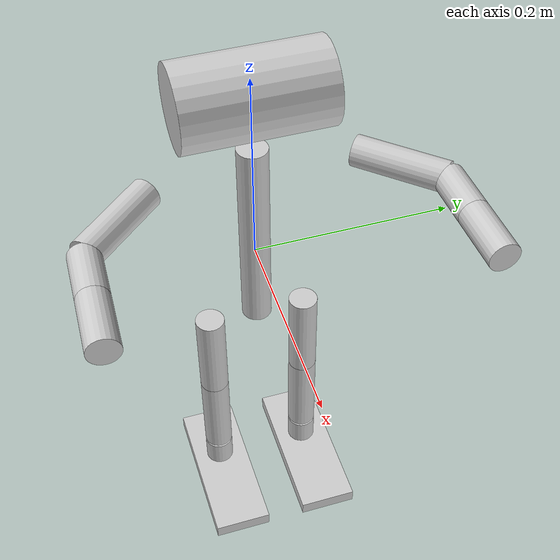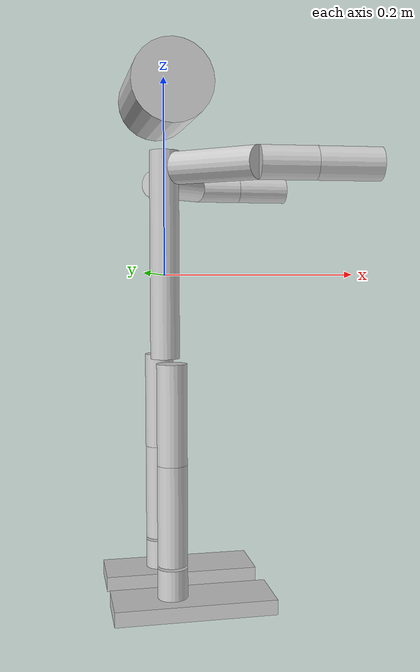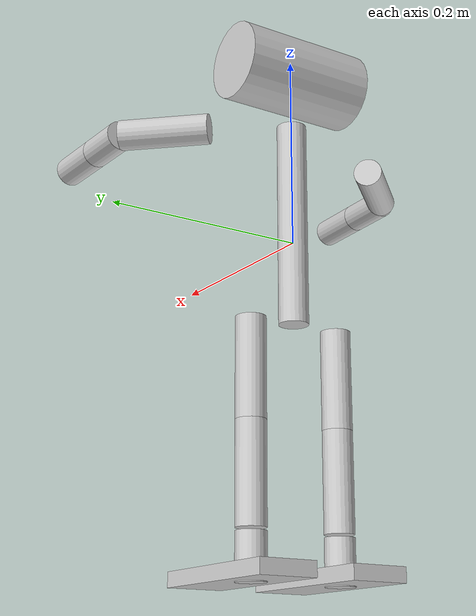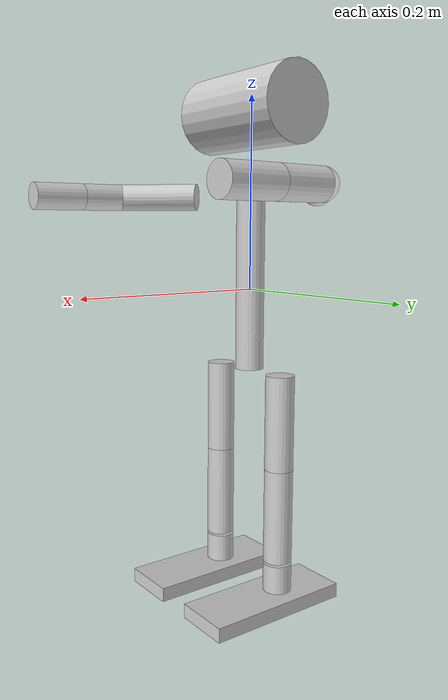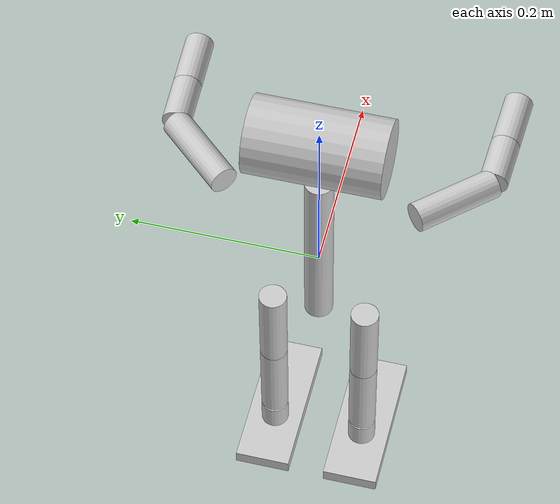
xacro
<?xml version="1.0"?>
<robot xmlns:xacro="http://ros.org/wiki/xacro" name="nao">

  <include filename="$(find nao_description)/urdf/visuals.xacro" />
  <include filename="$(find nao_description)/urdf/nao_robot_v3_structure.urdf.xacro" />

</robot>

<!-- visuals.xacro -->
<!--
    A simple visualization of the Nao's kinematic structure as cylinders
-->
<robot xmlns:xacro="http://ros.org/wiki/xacro">
  <material name="LightGrey">
    <color rgba="0.8 0.8 0.8 1.0"/>
  </material>
  <material name="Grey">
      <color rgba="0.6 0.6 0.6 1.0"/>
  </material>
  <material name="DarkGrey">
      <color rgba="0.3 0.3 0.3 1.0"/>
  </material>
  <material name="Black">
      <color rgba="0.1 0.1 0.1 1.0"/>
  </material>

    <xacro:property name="pi" value="3.1415926535897931"/>
    <xacro:property name="pi_2" value="1.5707963267948966"/>

    <xacro:macro name="insert_visualization_torso" params="">
        <visual>
            <!-- one cylinder spanning over HipOffsetZ and NeckOffsetZ -->
            <origin xyz="0 0 0.02075" rpy="0 0 0"/>
            <geometry>
                <cylinder radius="0.015" length="0.2115"/>
            </geometry>
            <material name="LightGrey"/>
        </visual>
    </xacro:macro>

    <xacro:macro name="insert_visualization_headYaw" params="">
    </xacro:macro>

    <xacro:macro name="insert_visualization_head" params="">
        <visual>
            <origin xyz="0 0 0.058" rpy="1.57 0 0"/>
            <geometry>
                <cylinder radius="0.04" length="0.14"/>
            </geometry>
            <material name="LightGrey"/>
        </visual>
    </xacro:macro>

    <xacro:macro name="insert_visualization_arm" params="side">
        <visual>
            <origin xyz="0.045 0 0" rpy="${pi_2} 0 ${pi_2}"/>
            <geometry>
                <cylinder radius="0.015" length="0.09"/>
            </geometry>
            <material name="LightGrey"/>
        </visual>
    </xacro:macro>

    <xacro:macro name="insert_visualization_elbow" params="side">
        <visual>
            <origin xyz="0.025325 0 0" rpy="${pi_2} 0 ${pi_2}"/>
            <geometry>
                <cylinder radius="0.015" length="0.05065"/>
            </geometry>
            <material name="LightGrey"/>
        </visual>
    </xacro:macro>

    <xacro:macro name="insert_visualization_wrist" params="side">
        <visual>
            <origin xyz="0.029 0 0" rpy="${pi_2} 0 ${pi_2}"/>
            <geometry>
                <cylinder radius="0.015" length="0.058"/>
            </geometry>
            <material name="LightGrey"/>
        </visual>
    </xacro:macro>

    <xacro:macro name="insert_visualization_hip" params="side">
    </xacro:macro>

    <xacro:macro name="insert_visualization_hipRoll" params="side">
    </xacro:macro>

    <xacro:macro name="insert_visualization_thigh" params="side">
        <visual>
            <origin xyz="0 0 -0.05" rpy="0 0 0"/>
            <geometry>
                <cylinder radius="0.015" length="0.1"/>
            </geometry>
            <material name="LightGrey"/>
        </visual>
    </xacro:macro>

    <xacro:macro name="insert_visualization_shine" params="side">
        <visual>
            <origin xyz="0 0 -0.05" rpy="0 0 0"/>
            <geometry>
                <cylinder radius="0.015" length="0.1"/>
            </geometry>
            <material name="LightGrey"/>
        </visual>
    </xacro:macro>

    <xacro:macro name="insert_visualization_ankle" params="side">
    </xacro:macro>

    <xacro:macro name="insert_visualization_ankleRoll" params="side">
        <visual>
            <origin xyz="0 0 -0.023" rpy="0 0 0"/>
            <geometry>
                <cylinder radius="0.015" length="0.046"/>
            </geometry>
            <material name="LightGrey"/>
        </visual>
    </xacro:macro>

    <xacro:macro name="insert_visualization_foot" params="side">
        <visual>
            <origin xyz="0.02 0 0.0075" rpy="0 0 0"/>
            <geometry>
                <box size="0.16 0.06 0.015"/>
            </geometry>
            <material name="LightGrey"/>
        </visual>
    </xacro:macro>

    <xacro:macro name="insert_visualization_cameraTop" params="">
    </xacro:macro>

    <xacro:macro name="insert_visualization_cameraBottom" params="">
    </xacro:macro>

    <xacro:macro name="insert_visualization_fingers" params="side">
    </xacro:macro>

    <xacro:macro name="insert_visualization_elbow_yaw" params="side">
    </xacro:macro>
</robot>

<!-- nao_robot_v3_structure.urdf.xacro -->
<robot xmlns:xacro="http://ros.org/wiki/xacro">

  <!-- dummy first link, directly connects with torso -->
  <link name="base_link" />

  <!-- first real link of the robot, inertial reference frame -->
  <link name="torso" >
    <inertial>
      <origin xyz="-0.00480 0.00006 0.04227" rpy="0 0 0"/>
      <mass value="1.02628"/>
      <inertia ixx="0.00487953284"  ixy="-0.00001428591"  ixz="-0.00019545651" iyy="0.00470360698" iyz="0.00002224589" izz="0.0015671352" />
    </inertial>
    <xacro:insert_visualization_torso/>
  </link>

  <link name="HeadYaw_link">
    <inertial>
      <origin xyz="-0.00003 0.00018 -0.02573" rpy="0 0 0"/>
      <mass value="0.05959"/>
      <inertia ixx="0.00006223368"  ixy="0.00000000042"  ixz="0.00000007448" iyy="0.00006324431" iyz="0.00000010416" izz="0.00000549462" />
    </inertial>
    <xacro:insert_visualization_headYaw/>
  </link>

  <link name="HeadPitch_link">
    <inertial>
      <origin xyz="0.00383 -0.00093 0.05156" rpy="0 0 0"/>
      <mass value="0.47671"/>
      <inertia ixx="0.00208895741"  ixy="0.00000549094"  ixz="0.0001133995" iyy="1932222.63e-9" iyz="-0.00002803917" izz="0.00082257793" />
    </inertial>
    <xacro:insert_visualization_head/>
  </link>

  <link name="gaze" />

  <link name="CameraTop_frame">
    <xacro:insert_visualization_cameraTop/>
  </link>

  <link name="CameraBottom_frame">
    <xacro:insert_visualization_cameraBottom/>
  </link>

  <!-- Arm -->
  <xacro:macro name="arm_links" params="side reflect">
  <link name = "${side}ShoulderPitch_link">
    <inertial>
      <origin xyz="-0.00178 ${reflect*0.02507} 0.00019" rpy="0 0 0"/>
      <mass value="0.06984"/>
      <inertia ixx="0"  ixy="0"  ixz="0" iyy="0" iyz="0" izz="0" />
    </inertial>
  </link>

  <link name = "${side}ShoulderRoll_link" >
    <inertial>
      <origin xyz="0.02067 ${reflect*-0.00388} 0.00362" rpy="0 0 0"/>
      <mass value="0.12166"/>
      <inertia ixx="0"  ixy="0"  ixz="0" iyy="0" iyz="0" izz="0" />
    </inertial>
    <xacro:insert_visualization_arm side="${side}"/>
  </link>

  <link name = "${side}ElbowYaw_link">
    <inertial>
      <origin xyz="-0.02573 ${reflect*0.00001} -0.00020" rpy="0 0 0"/>
      <mass value="0.05959"/>
      <inertia ixx="0"  ixy="0"  ixz="0" iyy="0" iyz="0" izz="0" />
    </inertial>

    <xacro:insert_visualization_elbow_yaw side="${side}"/>
  </link>

  <link name = "${side}ElbowRoll_link">
    <inertial>
      <origin xyz="0.01940 ${reflect*-0.00304} 0.00250" rpy="0 0 0"/>
      <mass value="0.03770"/>
      <inertia ixx="0"  ixy="0"  ixz="0" iyy="0" iyz="0" izz="0" />
    </inertial>

    <xacro:insert_visualization_elbow side="${side}"/>
  </link>

  <link name = "${side}WristYaw_link">
    <inertial>
      <origin xyz="0.03241 ${reflect*-0.00268} -0.00272" rpy="0 0 0"/>
      <mass value="0.14314"/>
      <inertia ixx="0"  ixy="0"  ixz="0" iyy="0" iyz="0" izz="0" />
    </inertial>
    <xacro:insert_visualization_wrist side="${side}"/>
  </link>
  </xacro:macro>
  <link name="l_wrist"/>
  <link name="r_wrist"/>

  <link name="l_gripper">
    <xacro:insert_visualization_fingers side="L"/>
  </link>
  <link name="r_gripper">
    <xacro:insert_visualization_fingers side="R"/>
  </link>

  <xacro:arm_links side="L" reflect="-1"/>
  <xacro:arm_links side="R" reflect="1"/>

  <!-- Leg links -->
  <xacro:macro name="leg_links" params="side reflect">
  <link name="${side}HipYawPitch_link" >
    <inertial>
      <origin xyz="-0.00717 ${reflect*0.01187} 0.02705" rpy="0 0 0"/>
      <mass value="0.07244"/>
      <inertia ixx="0"  ixy="0"  ixz="0" iyy="0" iyz="0" izz="0" />
    </inertial>
    <xacro:insert_visualization_hip side="${side}"/>
	</link>

  <link name="${side}HipRoll_link">
    <inertial>
      <origin xyz="-0.01649 ${reflect*-0.00029} -0.00475" rpy="0 0 0"/>
      <mass value="0.13530"/>
      <inertia ixx="0"  ixy="0"  ixz="0" iyy="0" iyz="0" izz="0" />
    </inertial>
    <xacro:insert_visualization_hipRoll side="${side}"/>
  </link>

  <link name="${side}HipPitch_link">
    <inertial>
      <origin xyz="0.00131 ${reflect*-0.00201} -0.05386" rpy="0 0 0"/>
      <mass value="0.39798"/>
      <inertia ixx="0"  ixy="0"  ixz="0" iyy="0" iyz="0" izz="0" />
    </inertial>
    <xacro:insert_visualization_thigh side="${side}"/>
  </link>

  <link name="${side}KneePitch_link">
    <inertial>
      <origin xyz="0.00471 ${reflect*-0.00210} -0.04891" rpy="0 0 0"/>
      <mass value="0.29706"/>
      <inertia ixx="0"  ixy="0"  ixz="0" iyy="0" iyz="0" izz="0" />
    </inertial>
    <xacro:insert_visualization_shine side="${side}"/>
  </link>

  <link name="${side}AnklePitch_link">
    <inertial>
      <origin xyz="0.00142 ${reflect*-0.00028} 0.00638" rpy="0 0 0"/>
      <mass value="0.13892"/>
      <inertia ixx="0"  ixy="0"  ixz="0" iyy="0" iyz="0" izz="0" />
    </inertial>
    <xacro:insert_visualization_ankle side="${side}"/>
  </link>

  <link name="${side}AnkleRoll_link">
   <inertial>
      <origin xyz="0.02489 ${reflect*-0.00330} -0.03208" rpy="0 0 0"/>
      <mass value="0.16304"/>
      <inertia ixx="0"  ixy="0"  ixz="0" iyy="0" iyz="0" izz="0" />
    </inertial>
    <xacro:insert_visualization_ankleRoll side="${side}"/>
  </link>
  </xacro:macro>
  <link name="l_ankle" />
  <link name="r_ankle" />

  <link name="l_sole">
    <xacro:insert_visualization_foot side="L"/>
  </link>
  <link name="r_sole">
    <xacro:insert_visualization_foot side="R"/>
  </link>

  <xacro:leg_links side="L" reflect="-1"/>
  <xacro:leg_links side="R" reflect="1"/>

<!--   Joints following below -->

  <joint name="base_joint" type="fixed">
    <child link="torso"/>
    <parent link="base_link"/>
    <origin xyz="0 0 0" rpy="0 0 0" />
  </joint>

  <!-- Head joints -->

  <joint name="HeadYaw" type="revolute">
    <parent link="torso"/>
    <child link="HeadYaw_link"/>
	<!-- NeckOffsetZ -->
    <origin xyz="0 0 0.1265" rpy="0 0 0" />
    <axis xyz="0 0 1" />
    <limit velocity="3.0" effort="30" lower="-2.0857" upper="2.0857" />
  </joint>

  <joint name="HeadPitch" type="revolute">
    <parent link="HeadYaw_link"/>
    <child link="HeadPitch_link"/>
    <origin xyz="0 0 0" rpy="0 0 0" />
    <axis xyz="0 1 0" />
    <limit velocity="3.0" effort="30" lower="-0.6720" upper="0.5149" />
  </joint>

  <joint name="gaze_joint" type="fixed">
    <parent link="HeadPitch_link"/>
    <child link="gaze"/>
    <origin xyz="0.0539 0 0.05" />
  </joint>

  <joint name="CameraTop" type="fixed">
    <parent link="HeadPitch_link"/>
    <child link="CameraTop_frame"/>
    <origin xyz="0.0539 0 0.0679" rpy="-${pi_2} 0 -${pi_2}" />
  </joint>

  <joint name="CameraBottom" type="fixed">
    <parent link="HeadPitch_link"/>
    <child link="CameraBottom_frame"/>
    <!-- rotated by 40 degrees (pitch) -->
    <origin xyz="0.0488 0 0.02381" rpy="-2.26893 0 -${pi_2}" />
  </joint>

  <!-- Arm joints -->
  <xacro:macro name="arm_joints" params="side reflect">
  <joint name="${side}ShoulderPitch" type="revolute">
    <parent link="torso"/>
    <child link="${side}ShoulderPitch_link"/>
    <origin xyz="0 ${reflect*-0.098} 0.1" rpy="0 0 0"/>
    <axis xyz="0 1 0"/>
    <limit velocity="3.0" effort="30" lower="-2.0857" upper="2.0857"/>
  </joint>

  <joint name="${side}ElbowYaw" type="revolute">
    <parent link="${side}ShoulderRoll_link"/>
    <child link="${side}ElbowYaw_link"/>
    <origin xyz="0.09 0 0" rpy="0 0 0"/>
    <axis xyz="1 0 0"/>
    <limit velocity="3.0" effort="30" lower="-2.0857" upper="2.0857"/>
  </joint>

  <joint name="${side}WristYaw" type="revolute">
    <parent link="${side}ElbowRoll_link"/>
    <child link="${side}WristYaw_link"/>
    <origin xyz="0.05055 0 0" rpy="0 0 0"/>
    <axis xyz="1 0 0"/>
    <limit velocity="3.0" effort="30" lower="-1.8238" upper="1.8238"/>
  </joint>
  </xacro:macro>

  <joint name="l_wrist_joint" type="fixed">
    <parent link="LWristYaw_link" />
    <child link="l_wrist" />
    <origin xyz="0 0 0" />
  </joint>
  <joint name="r_wrist_joint" type="fixed">
    <parent link="RWristYaw_link" />
    <child link="r_wrist" />
    <origin xyz="0 0 0" />
  </joint>

  <joint name="l_gripper_joint" type="fixed">
    <parent link="l_wrist" />
    <child link="l_gripper" />
    <origin xyz="0.058 0 -0.0159" />
  </joint>
  <joint name="r_gripper_joint" type="fixed">
    <parent link="r_wrist" />
    <child link="r_gripper" />
    <origin xyz="0.058 0 -0.0159" />
  </joint>

  <joint name="LElbowRoll" type="revolute">
    <parent link="LElbowYaw_link"/>
    <child link="LElbowRoll_link"/>
    <origin xyz="0 0 0" rpy="0 0 0"/>
    <axis xyz="0 0 1"/>
    <limit velocity="3.0" effort="30" lower="-1.5621" upper="-0.0087"/>
  </joint>
  <joint name="RElbowRoll" type="revolute">
    <parent link="RElbowYaw_link"/>
    <child link="RElbowRoll_link"/>
    <origin xyz="0 0 0" rpy="0 0 0"/>
    <axis xyz="0 0 1"/>
    <limit velocity="3.0" effort="30" lower="0.0087" upper="1.5621"/>
  </joint>

  <joint name="LShoulderRoll" type="revolute">
    <parent link="LShoulderPitch_link"/>
    <child link="LShoulderRoll_link"/>
    <origin xyz="0 0 0" rpy="0 0 0"/>
    <axis xyz="0 0 1"/>
    <limit velocity="3.0" effort="30" lower="0.0087" upper="1.6494"/>
  </joint>
  <joint name="RShoulderRoll" type="revolute">
    <parent link="RShoulderPitch_link"/>
    <child link="RShoulderRoll_link"/>
    <origin xyz="0 0 0" rpy="0 0 0"/>
    <axis xyz="0 0 1"/>
    <limit velocity="3.0" effort="30" lower="-1.6494" upper="-0.0087"/>
  </joint>

  <xacro:arm_joints side="L" reflect="-1"/>
  <xacro:arm_joints side="R" reflect="1"/>

  <!-- Leg joints -->
  <joint name="LHipYawPitch" type="revolute">
    <parent link="torso"/>
    <child link="LHipYawPitch_link"/>
    <origin xyz="0 0.05 -0.085" rpy="0 0 0"/>
    <axis xyz="0 0.707106 -0.707106"/>
    <limit velocity="3.0" effort="30" lower="-1.145303" upper="0.740810"/>
  </joint>
  <joint name="RHipYawPitch" type="revolute">
    <parent link="torso"/>
    <child link="RHipYawPitch_link"/>
    <origin xyz="0 -0.05 -0.085" rpy="0 0 0"/>
    <axis xyz="0 0.707106 0.707106"/>
    <limit velocity="3.0" effort="30" lower="-1.145303" upper="0.740810"/>
    <mimic joint="LHipYawPitch" multiplier="1" offset="0"/>
  </joint>

  <xacro:macro name="leg_joints" params="side reflect">
  <joint name="${side}HipPitch" type="revolute">
    <parent link="${side}HipRoll_link"/>
    <child link="${side}HipPitch_link"/>
    <origin xyz="0 0 0" rpy="0 0 0"/>
    <axis xyz="0 1 0"/>
    <!-- LHipPitch limits: -1.773912 .. 0.484090 -->
    <!-- RHipPitch limits: -1.772308 .. 0.485624 -->
    <limit velocity="3.0" effort="30" lower="-1.772308" upper="0.484090"/>
  </joint>

  <joint name="${side}KneePitch" type="revolute">
    <parent link="${side}HipPitch_link"/>
    <child link="${side}KneePitch_link"/>
    <origin xyz="0 0 -0.1" rpy="0 0 0"/>
    <axis xyz="0 1 0"/>
    <!-- LKneePitch limits: -0.092346 .. 2.112528 -->
    <!-- RKneePitch limits: -0.103083 .. 2.120198 -->
    <limit velocity="3.0" effort="30" lower="-0.092346" upper="2.112528"/>
  </joint>

  <joint name="${side}AnklePitch" type="revolute">
    <parent link="${side}KneePitch_link"/>
    <child link="${side}AnklePitch_link"/>
    <origin xyz="0 0 -0.10275" rpy="0 0 0"/>
    <axis xyz="0 1 0"/>
    <!-- LAnklePitch limits: -1.189516 .. 0.922747 -->
    <!-- RAnklePitch limits: -1.186448 .. 0.932056 -->
    <limit velocity="3.0" effort="30" lower="-1.186448" upper="0.922747"/>
  </joint>
  </xacro:macro>

  <joint name="LHipRoll" type="revolute">
    <parent link="LHipYawPitch_link"/>
    <child link="LHipRoll_link"/>
    <origin xyz="0 0 0" rpy="0 0 0"/>
    <axis xyz="1 0 0"/>
    <limit velocity="3.0" effort="30" lower="-0.379472" upper="0.790477"/>
  </joint>
  <joint name="RHipRoll" type="revolute">
    <parent link="RHipYawPitch_link"/>
    <child link="RHipRoll_link"/>
    <origin xyz="0 0 0" rpy="0 0 0"/>
    <axis xyz="1 0 0"/>
    <limit velocity="3.0" effort="30" lower="-0.738321" upper="0.414754"/>
  </joint>

  <joint name="LAnkleRoll" type="revolute">
    <parent link="LAnklePitch_link"/>
    <child link="LAnkleRoll_link"/>
    <origin xyz="0 0 0" rpy="0 0 0"/>
    <axis xyz="1 0 0"/>
    <limit velocity="3.0" effort="30" lower="-0.769001" upper="0.397880"/>
  </joint>
  <joint name="RAnkleRoll" type="revolute">
    <parent link="RAnklePitch_link"/>
    <child link="RAnkleRoll_link"/>
    <origin xyz="0 0 0" rpy="0 0 0"/>
    <axis xyz="1 0 0"/>
    <limit velocity="3.0" effort="30" lower="-0.388676" upper="0.785875"/>
  </joint>

  <joint name="l_ankle_joint" type="fixed">
    <parent link="LAnkleRoll_link" />
    <child link="l_ankle" />
    <origin xyz="0 0 0" />
  </joint>
  <joint name="r_ankle_joint" type="fixed">
    <parent link="RAnkleRoll_link" />
    <child link="r_ankle" />
    <origin xyz="0 0 0" />
  </joint>
  <joint name="l_sole_joint" type="fixed">
    <parent link="l_ankle" />
    <child link="l_sole" />
    <origin xyz="0 0 -0.04511" />
  </joint>
  <joint name="r_sole_joint" type="fixed">
    <parent link="r_ankle" />
    <child link="r_sole" />
    <origin xyz="0 0 -0.04511" />
  </joint>

  <xacro:leg_joints side="L" reflect="-1"/>
  <xacro:leg_joints side="R" reflect="1"/>

</robot>
